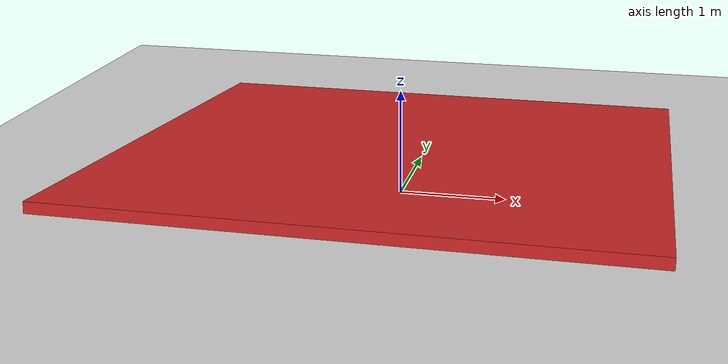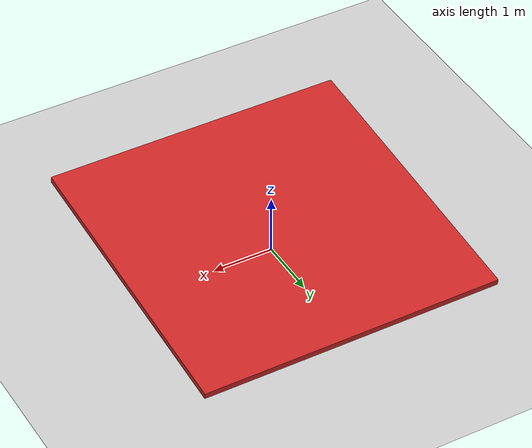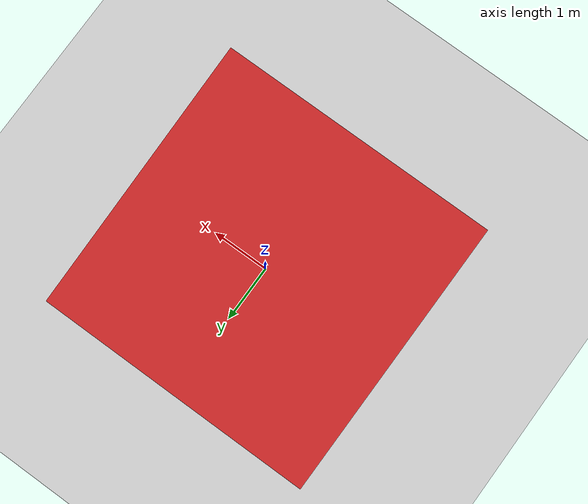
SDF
<?xml version="1.0" ?>
<sdf version="1.7">
  <world name="default_world">
    <!-- Include ground plane and sun -->
    <include>
      <uri>model://ground_plane</uri>
    </include>
    <include>
      <uri>model://sun</uri>
    </include>

    <!-- Ramp Model -->
    <model name="ramp">
      <static>true</static>
      <link name="ramp_link">
        <collision name="collision">
          <geometry>
            <box>
              <size>5 2 0.1</size> <!-- Length, Width, Height of the ramp -->
            </box>
          </geometry>
        </collision>
        <visual name="visual">
          <geometry>
            <box>
              <size>5 5 0.1</size>
            </box>
          </geometry>
          <material>
            <script>
              <uri>file://media/materials/scripts/gazebo.material</uri>
              <name>Gazebo/Red</name>
            </script>
          </material>
        </visual>
      </link>
      <!-- Pose: Rotate about Y-axis to create 5-degree incline -->
      <pose>0 0 0.4 -0.0872665 0 0</pose> <!-- 5 degrees in radians = 0.0872665 -->
    </model>
  </world>
</sdf>
